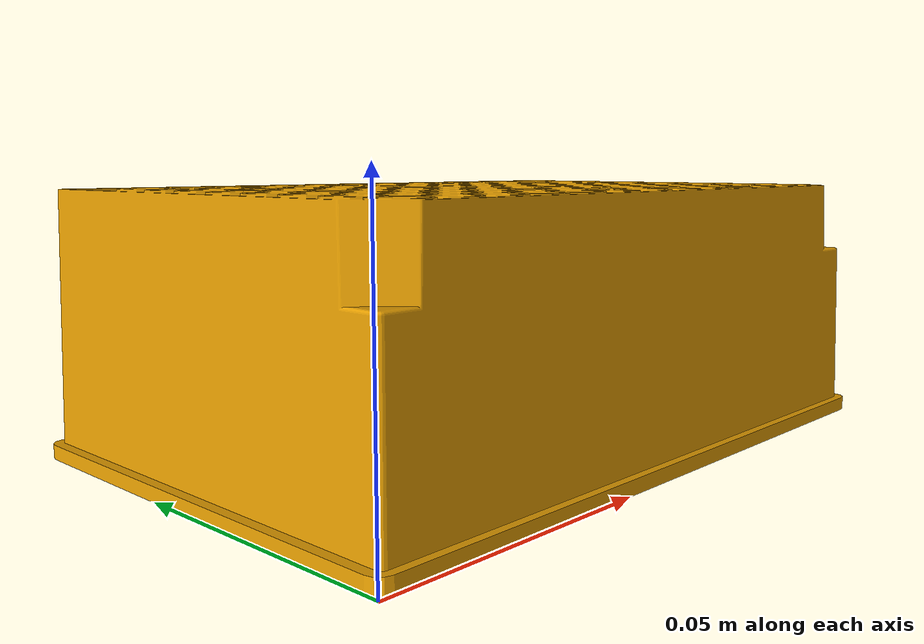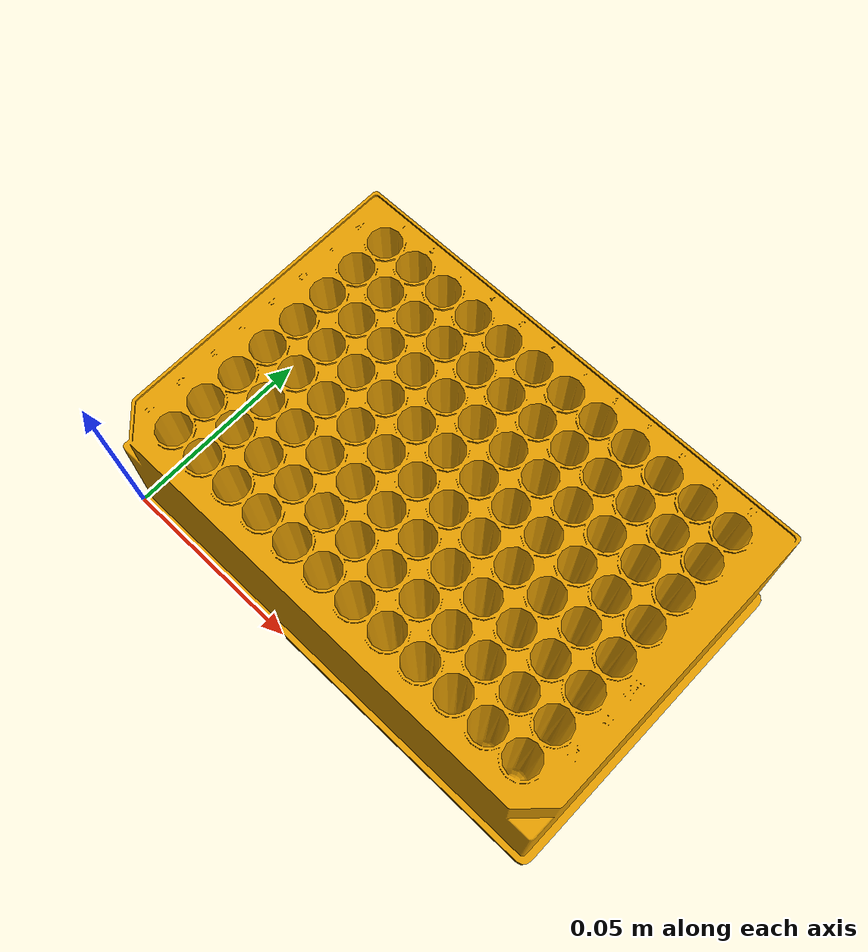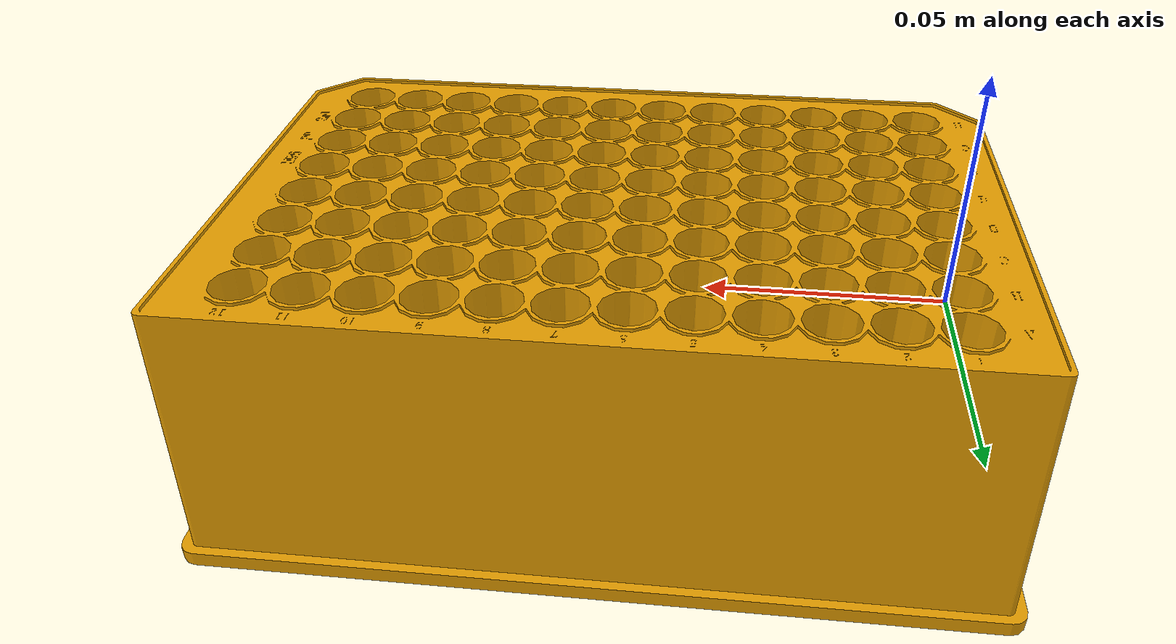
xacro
<?xml version="1.0" ?>
<robot xmlns:xacro="http://www.ros.org/wiki/xacro" name="plate_96">
    <link name='plate_96'>
        <visual name='visual'>
            <geometry>
                <mesh filename="meshes/plate_96.stl"/>
            </geometry>
            <material name="clay" />
        </visual>
    </link>
</robot>
